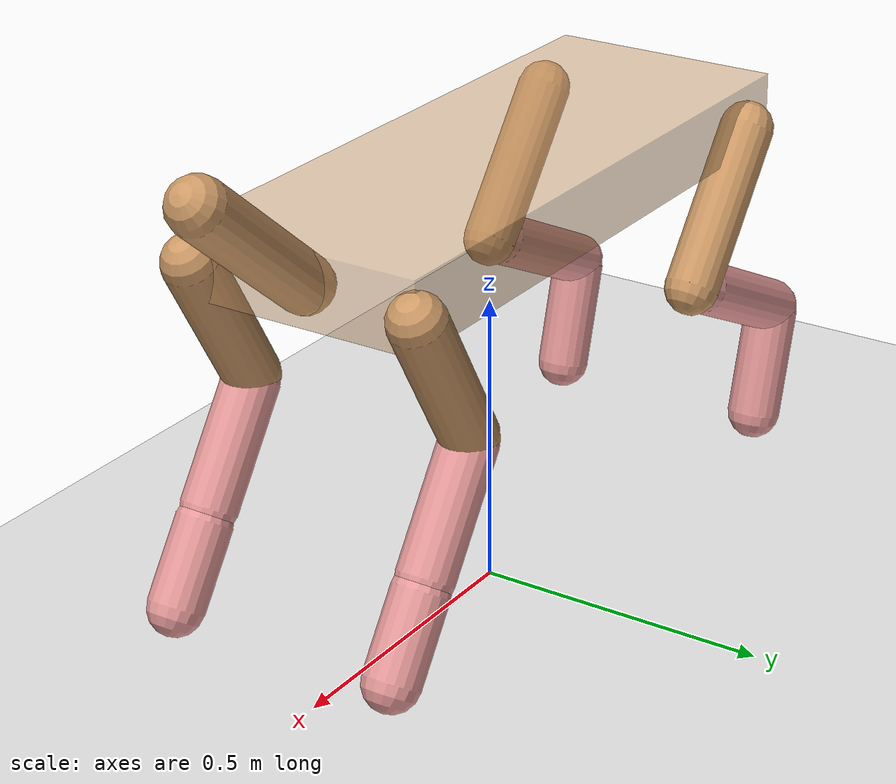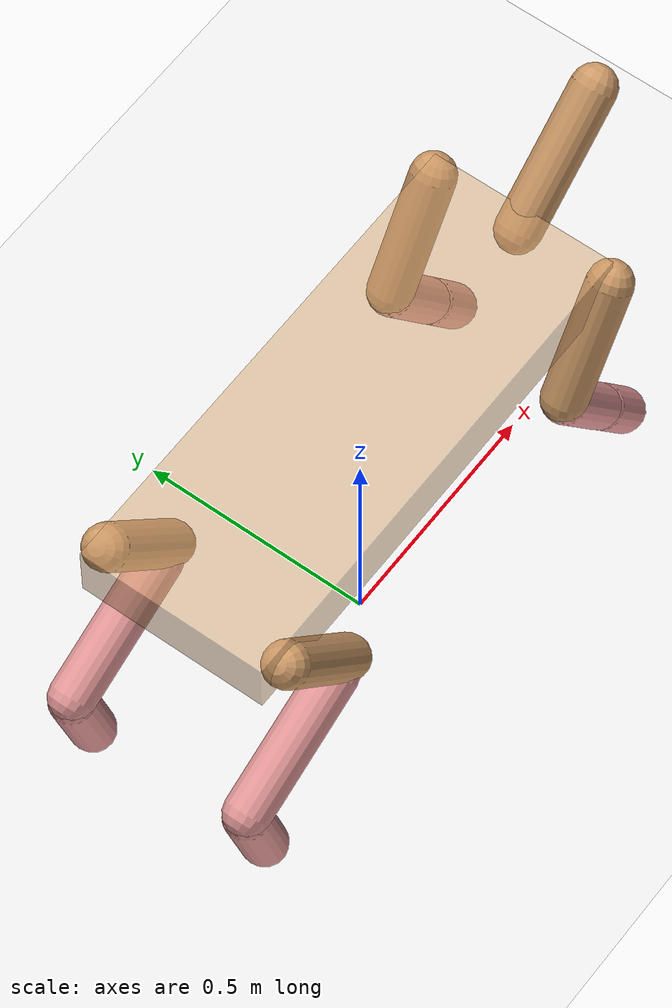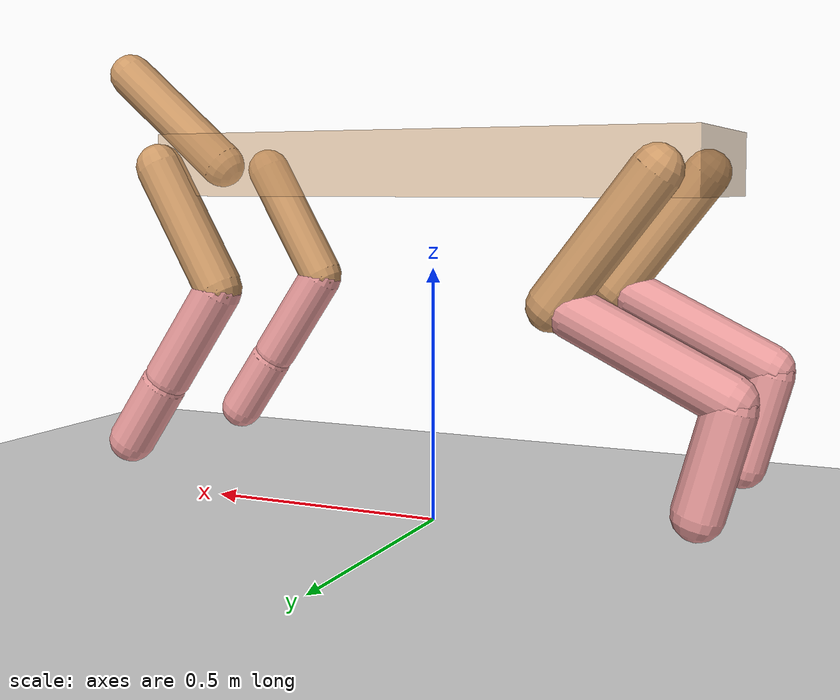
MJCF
<mujoco model='cheetah'>
  <compiler inertiafromgeom='true' coordinate='local' angle='radian' settotalmass='14' />
  <custom>
    <numeric name="frame_skip" data="10" />
  </custom>
  <default>
    <joint limited='true' damping='.01' armature='.1' stiffness='8' />
    <geom contype='1' conaffinity='0' condim='3' friction='.4 .1 .1' rgba='0.8 0.6 .4 1' />
    <motor ctrlrange='-1 1' ctrllimited='true' />
  </default>
  <size nstack='300000' nuser_geom='1' />
  <option timestep='0.001' gravity='0 0 -9.81' />
  <worldbody>
    <light directional="true" cutoff="100" exponent="1" diffuse="1 1 1" specular=".1 .1 .1" pos="0 0 1.3" dir="-0 0 -1.3" />
    <geom name='ground' material='MatGnd' type='plane' conaffinity='1' pos='0 0 0' size='40 40 40' rgba='0.9 0.9 0.9 1' />
    <body name='torso' pos='0 0 .7'>
      <joint name='rootx' type='slide' pos='0 0 0' axis='1 0 0' limited='false' damping='0' armature='0' stiffness='0' />
      <joint name='rootxh' type='hinge' pos='0 0 0' axis='1 0 0' limited='false' damping='0' armature='0' stiffness='0' />
      <joint name='rootz' type='slide' pos='0 0 0' axis='0 0 1' limited='false' damping='0' armature='0' stiffness='0' />
      <joint name='rootzh' type='hinge' pos='0 0 0' axis='0 0 1' limited='false' damping='0' armature='0' stiffness='0' />
      <joint name='rooty' type='slide' pos='0 0 0' axis='0 1 0' limited='false' damping='0' armature='0' stiffness='0' />
      <joint name='rootyh' type='hinge' pos='0 0 0' axis='0 1 0' limited='false' damping='0' armature='0' stiffness='0' />
      <geom name='torso' rgba="0.8 0.6 0.4 0.5" material="trans_geom" type='box' pos="-0.03 0 0" size="0.53 0.2 0.06" />
      <geom name='head' type='capsule' pos='.6 0 .1' axisangle='0 1 0 .87' size='0.046 .15' />
      <body name='lbthigh' pos='-.5 0.2 0'>
        <joint name='lbthighy' type='hinge' pos='0 0 0' axis='0 1 0' range='-.52 1.05' stiffness='240' damping='6' />
        <joint name='lbthighx' type='hinge' pos='0 0 0' axis='1 0 0' range='-.52 1.05' stiffness='240' damping='6' />
        <geom name='lbthigh' type='capsule' pos='.1 0 -.13' axisangle='0 1 0 -3.8' size='0.046 .145' />
        <body name='lbshin' pos='.16 0 -.25'>
          <joint name='lbshiny' type='hinge' pos='0 0 0' axis='0 1 0' range='-.785 .785' stiffness='180' damping='4.5' />
          <joint name='lbshinx' type='hinge' pos='0 0 0' axis='1 0 0' range='-.785 .785' stiffness='180' damping='4.5' />
          <geom name='lbshin' type='capsule' pos='-.14 0 -.07' axisangle='0 1 0 -2.03' size='0.046 .15' rgba='0.9 0.6 0.6 1' />
          <body name='lbfoot' pos='-.28 0 -.14'>
            <joint name='lbfooty' type='hinge' pos='0 0 0' axis='0 1 0' range='-.4 .785' stiffness='120' damping='3' />
            <joint name='lbfootx' type='hinge' pos='0 0 0' axis='1 0 0' range='-.4 .785' stiffness='120' damping='3' />
            <geom name='lbfoot' type='capsule' pos='.03 0 -.097' axisangle='0 1 0 -.27' size='0.046 .094' rgba='0.9 0.6 0.6 1' />
          </body>
        </body>
      </body>
      <body name='rbthigh' pos='-.5 -0.2 0'>
        <joint name='rbthighy' type='hinge' pos='0 0 0' axis='0 1 0' range='-.52 1.05' stiffness='240' damping='6' />
        <joint name='rbthighx' type='hinge' pos='0 0 0' axis='1 0 0' range='-.52 1.05' stiffness='240' damping='6' />
        <geom name='rbthigh' type='capsule' pos='.1 0 -.13' axisangle='0 1 0 -3.8' size='0.046 .145' />
        <body name='rbshin' pos='.16 0 -.25'>
          <joint name='rbshiny' type='hinge' pos='0 0 0' axis='0 1 0' range='-.785 .785' stiffness='180' damping='4.5' />
          <joint name='rbshinx' type='hinge' pos='0 0 0' axis='1 0 0' range='-.785 .785' stiffness='180' damping='4.5' />
          <geom name='rbshin' type='capsule' pos='-.14 0 -.07' axisangle='0 1 0 -2.03' size='0.046 .15' rgba='0.9 0.6 0.6 1' />
          <body name='rbfoot' pos='-.28 0 -.14'>
            <joint name='rbfooty' type='hinge' pos='0 0 0' axis='0 1 0' range='-.4 .785' stiffness='120' damping='3' />
            <joint name='rbfootx' type='hinge' pos='0 0 0' axis='1 0 0' range='-.4 .785' stiffness='120' damping='3' />
            <geom name='rbfoot' type='capsule' pos='.03 0 -.097' axisangle='0 1 0 -.27' size='0.046 .094' rgba='0.9 0.6 0.6 1' />
          </body>
        </body>
      </body>
      <body name='lfthigh' pos='.5 0.2 0'>
        <joint name='lfthighy' type='hinge' pos='0 0 0' axis='0 1 0' range='-1 .7' stiffness='180' damping='4.5' />
        <joint name='lfthighx' type='hinge' pos='0 0 0' axis='1 0 0' range='-1 .7' stiffness='180' damping='4.5' />
        <geom name='lfthigh' type='capsule' pos='-.07 0 -.12' axisangle='0 1 0 .52' size='0.046 .133' />
        <body name='lfshin' pos='-.14 0 -.24'>
          <joint name='lfshiny' type='hinge' pos='0 0 0' axis='0 1 0' range='-1.2 .87' stiffness='120' damping='3' />
          <joint name='lfshinx' type='hinge' pos='0 0 0' axis='1 0 0' range='-1.2 .87' stiffness='120' damping='3' />
          <geom name='lfshin' type='capsule' pos='.065 0 -.09' axisangle='0 1 0 -.6' size='0.046 .106' rgba='0.9 0.6 0.6 1' />
          <body name='lffoot' pos='.13 0 -.18'>
            <joint name='lffooty' type='hinge' pos='0 0 0' axis='0 1 0' range='-.5 .5' stiffness='60' damping='1.5' />
            <joint name='lffootx' type='hinge' pos='0 0 0' axis='1 0 0' range='-.5 .5' stiffness='60' damping='1.5' />
            <geom name='lffoot' type='capsule' pos='.045 0 -.07' axisangle='0 1 0 -.6' size='0.046 .07' rgba='0.9 0.6 0.6 1' />
          </body>
        </body>
      </body>
      <body name='rfthigh' pos='.5 -0.2 0'>
        <joint name='rfthighy' type='hinge' pos='0 0 0' axis='0 1 0' range='-1 .7' stiffness='180' damping='4.5' />
        <joint name='rfthighx' type='hinge' pos='0 0 0' axis='1 0 0' range='-1 .7' stiffness='180' damping='4.5' />
        <geom name='rfthigh' type='capsule' pos='-.07 0 -.12' axisangle='0 1 0 .52' size='0.046 .133' />
        <body name='rfshin' pos='-.14 0 -.24'>
          <joint name='rfshiny' type='hinge' pos='0 0 0' axis='0 1 0' range='-1.2 .87' stiffness='120' damping='3' />
          <joint name='rfshinx' type='hinge' pos='0 0 0' axis='1 0 0' range='-1.2 .87' stiffness='120' damping='3' />
          <geom name='rfshin' type='capsule' pos='.065 0 -.09' axisangle='0 1 0 -.6' size='0.046 .106' rgba='0.9 0.6 0.6 1' />
          <body name='rffoot' pos='.13 0 -.18'>
            <joint name='rffooty' type='hinge' pos='0 0 0' axis='0 1 0' range='-.5 .5' stiffness='60' damping='1.5' />
            <joint name='rffootx' type='hinge' pos='0 0 0' axis='1 0 0' range='-.5 .5' stiffness='60' damping='1.5' />
            <geom name='rffoot' type='capsule' pos='.045 0 -.07' axisangle='0 1 0 -.6' size='0.046 .07' rgba='0.9 0.6 0.6 1' />
          </body>
        </body>
      </body>
    </body>
  </worldbody>
  <actuator>
    <motor name='lbthighy' joint='lbthighy' gear='120' />
    <motor name='lbthighx' joint='lbthighx' gear='120' />
    <motor name='lbshiny' joint='lbshiny' gear='90' />
    <motor name='lbshinx' joint='lbshinx' gear='90' />
    <motor name='lbfooty' joint='lbfooty' gear='60' />
    <motor name='lbfootx' joint='lbfootx' gear='60' />
    <motor name='rbthighy' joint='rbthighy' gear='120' />
    <motor name='rbthighx' joint='rbthighx' gear='120' />
    <motor name='rbshiny' joint='rbshiny' gear='90' />
    <motor name='rbshinx' joint='rbshinx' gear='90' />
    <motor name='rbfooty' joint='rbfooty' gear='60' />
    <motor name='rbfootx' joint='rbfootx' gear='60' />
    <motor name='lfthighy' joint='lfthighy' gear='120' />
    <motor name='lfthighx' joint='lfthighx' gear='120' />
    <motor name='lfshiny' joint='lfshiny' gear='60' />
    <motor name='lfshinx' joint='lfshinx' gear='60' />
    <motor name='lffooty' joint='lffooty' gear='30' />
    <motor name='lffootx' joint='lffootx' gear='30' />
    <motor name='rfthighy' joint='rfthighy' gear='120' />
    <motor name='rfthighx' joint='rfthighx' gear='120' />
    <motor name='rfshiny' joint='rfshiny' gear='60' />
    <motor name='rfshinx' joint='rfshinx' gear='60' />
    <motor name='rffooty' joint='rffooty' gear='30' />
    <motor name='rffootx' joint='rffootx' gear='30' />
  </actuator>
  <asset>
    <material name='trans_geom' />
    <texture name="groundplane" type="2d" builtin="checker" random=".08" rgb1="0.25 0.64 0.85" rgb2="0.2 0.6 0.85" width="200" height="10" mark="random" markrgb=".8 .8 .8" />
    <material name="MatGnd" texture="groundplane" texscale="1 .6" specular="1" shininess="1" reflectance="0.00001" />
  </asset>
</mujoco>
